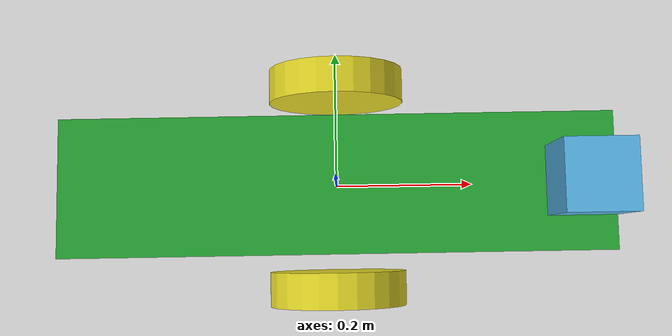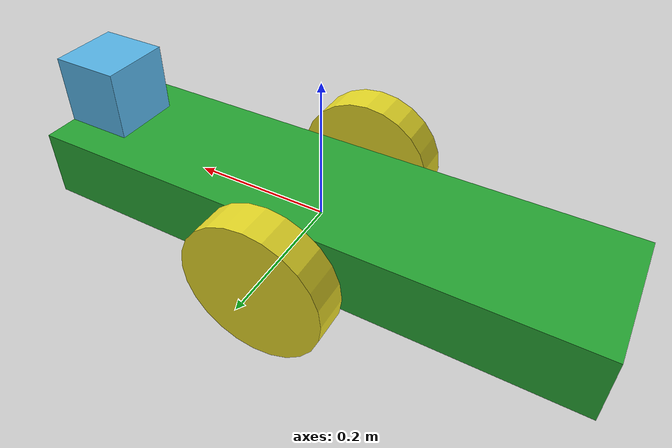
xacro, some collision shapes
<?xml version='1.0'?>

<robot name="my_robot" xmlns:xacro="http://www.ros.org/wiki/xacro">

  <xacro:include filename="$(find my_robot)/urdf/my_robot.gazebo" />

  <link name="robot_footprint"></link>

  <joint name="robot_footprint_joint" type="fixed">
    <origin xyz="0 0 0" rpy="0 0 0" />
    <parent link="robot_footprint"/>
    <child link="chassis" />
  </joint>

  <joint name="hokuyo_joint" type="fixed">
    <origin xyz="0.35 0 0.1" rpy="0 0 0" />
    <parent link="chassis"/>
    <child link="hokuyo" />
    <axis xyz="0 1 0" rpy="0 0 0"/>
  </joint>

  <link name='hokuyo'>
    <inertial>
    <origin xyz="0 0 0" rpy="0 0 0"/>
    <mass value="1e-5"/>
      <inertia
          ixx="1e-6" ixy="0" ixz="0"
          iyy="1e-6" iyz="0"
          izz="1e-6"
      />
    </inertial>

    <visual>
      <origin xyz="0 0 0" rpy="0 0 0"/>
      <geometry>
        <mesh filename="package://my_robot/meshes/hokuyo.dae"/>
      </geometry>
    </visual>

    <collision>
      <origin xyz="0 0 0" rpy="0 0 0"/>
      <geometry>
        <box size="0.1 0.1 0.1"/>
      </geometry>
    </collision>
  </link>

  <joint name="camera_joint" type="fixed">
    <origin xyz="0.4 0 0" rpy="0 0 0" />
    <parent link="chassis"/>
    <child link="camera" />
    <axis xyz="0 1 0" rpy="0 0 0"/>
  </joint>

  <link name='camera'>
    <inertial>
    <origin xyz="0 0 0" rpy="0 0 0"/>
    <mass value="0.1"/>
      <inertia
          ixx="1e-6" ixy="0" ixz="0"
          iyy="1e-6" iyz="0"
          izz="1e-6"
      />
    </inertial>

    <visual>
      <origin xyz="0 0 0" rpy="0 0 0"/>
      <geometry>
        <box size="0.05 0.05 0.05"/>
      </geometry>
    </visual>

    <collision>
      <origin xyz="0 0 0" rpy="0 0 0"/>
      <geometry>
        <box size="0.05 0.05 0.05"/>
      </geometry>
    </collision>
  </link>

<!-- adding RGB-D-->

  <joint name="camera_optical_joint" type="fixed">
    <origin xyz="0 0 0" rpy="-1.5707 0 -1.5707"/>
    <parent link="camera"/>
    <child link="camera_link_optical"/>
    <axis xyz="0 1 0" rpy="0 0 0"/>
  </joint>

  <link name="camera_link_optical">
    <inertial>
      <origin xyz="0 0 0" rpy="0 0 0"/>
      <mass value="0.1"/>
        <inertia
          ixx="1e-6" ixy="0" ixz="0"
          iyy="1e-6" iyz="0"
          izz="1e-6"
      />
    </inertial>

    <visual>
      <origin xyz="0 0 0" rpy="0 0 0"/>
      <geometry>
        <box size="0.05 0.05 0.05"/>
      </geometry>
    </visual>

    <collision>
      <origin xyz="0 0 0" rpy="0 0 0"/>
      <geometry>
        <box size="0.05 0.05 0.05"/>
      </geometry>
    </collision>

  </link>

  <joint name="left_wheel_hinge" type="continuous">
    <origin xyz="0 0.15 0" rpy="0 0 0" />
    <parent link="chassis"/>
    <child link="left_wheel" />
    <axis xyz="0 1 0" rpy="0 0 0"/>
    <limit effort="10000" velocity="1000"/>
    <dynamics damping="1.0" friction="1.0"/>
  </joint>

  <joint name="right_wheel_hinge" type="continuous">
    <origin xyz="0 0.15 0" rpy="0 0 0" />
    <parent link="chassis"/>
    <child link="right_wheel" />
    <axis xyz="0 1 0" rpy="0 0 0"/>
    <limit effort="10000" velocity="1000"/>
    <dynamics damping="1.0" friction="1.0"/>
  </joint>

  <link name='left_wheel'>
    <inertial>
    <origin xyz="0 0 0" rpy="0 1.5707 1.5707"/>
    <mass value="5"/>
      <inertia
          ixx="0.1" ixy="0" ixz="0"
          iyy="0.1" iyz="0"
          izz="0.1"
      />
    </inertial>

    <visual>
      <origin xyz="0 0 0" rpy="0 1.5707 1.5707"/>
      <geometry>
        <cylinder radius="0.1" length="0.05"/>
      </geometry>
    </visual>

    <collision>
      <origin xyz="0 0 0" rpy="0 1.5707 1.5707"/>
      <geometry>
        <cylinder radius="0.1" length="0.05"/>
      </geometry>
    </collision>
  </link>

  <link name='right_wheel'>
    <inertial>
    <origin xyz="0 -0.3 0" rpy="0 1.5707 1.5707"/>
    <mass value="5"/>
      <inertia
          ixx="0.1" ixy="0" ixz="0"
          iyy="0.1" iyz="0"
          izz="0.1"
      />
    </inertial>

    <visual>
      <origin xyz="0 -0.3 0" rpy="0 1.5707 1.5707"/>
      <geometry>
        <cylinder radius="0.1" length="0.05"/>
      </geometry>
    </visual>

    <collision>
      <origin xyz="0 -0.3 0" rpy="0 1.5707 1.5707"/>
      <geometry>
        <cylinder radius="0.1" length="0.05"/>
      </geometry>
    </collision>
  </link>

  <link name='chassis'>
    <pose>0 0 0.1 0 0 0</pose>

    <inertial>
      <mass value="15.0"/>
      <origin xyz="0.0 0 0" rpy=" 0 0 0"/>
      <inertia
          ixx="0.1" ixy="0" ixz="0"
          iyy="0.1" iyz="0"
          izz="0.1"
      />
    </inertial>

    <collision name='collision'>
      <origin xyz="0 0 0" rpy=" 0 0 0"/>
      <geometry>
        <box size=".4 .2 .1"/>
      </geometry>
    </collision>

    <visual name='chassis_visual'>
      <origin xyz="0 0 0" rpy=" 0 0 0"/>
      <geometry>
        <box size=".8 .2 .1"/>
      </geometry>
    </visual>

    <collision name='back_caster_collision'>
      <origin xyz="-0.35 0 -0.05" rpy=" 0 0 0"/>
      <geometry>
        <sphere radius="0.0499"/>
      </geometry>
    </collision>

    <visual name='back_caster_visual'>
      <origin xyz="-0.35 0 -0.05" rpy=" 0 0 0"/>
      <geometry>
        <sphere radius="0.05"/>
      </geometry>
    </visual>

    <collision name='front_caster_collision'>
      <origin xyz="0.35 0 -0.05" rpy=" 0 0 0"/>
      <geometry>
        <sphere radius="0.0499"/>
      </geometry>
    </collision>

    <visual name='front_caster_visual'>
      <origin xyz="0.35 0 -0.05" rpy=" 0 0 0"/>
      <geometry>
        <sphere radius="0.05"/>
      </geometry>
    </visual>

  </link>

  <gazebo reference="chassis">
    <material>Gazebo/Green</material>
  </gazebo>

  <gazebo reference="left_wheel">
    <material>Gazebo/Yellow</material>
  </gazebo>

  <gazebo reference="right_wheel">
    <material>Gazebo/Yellow</material>
  </gazebo>

  <gazebo reference="camera">
    <material>Gazebo/Blue</material>
  </gazebo>

</robot>
